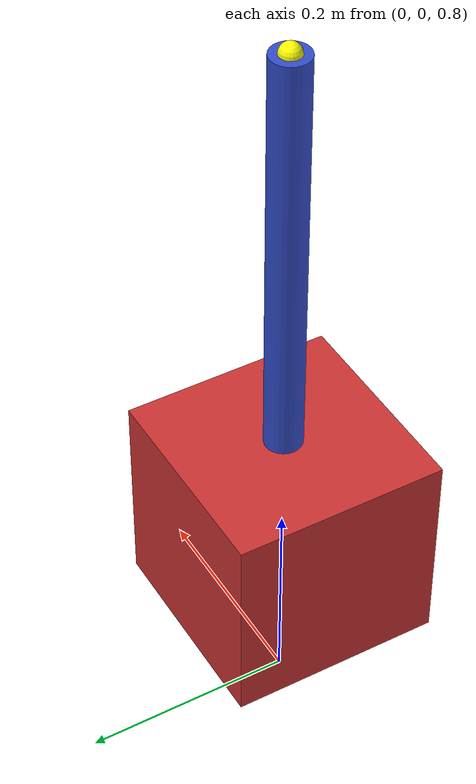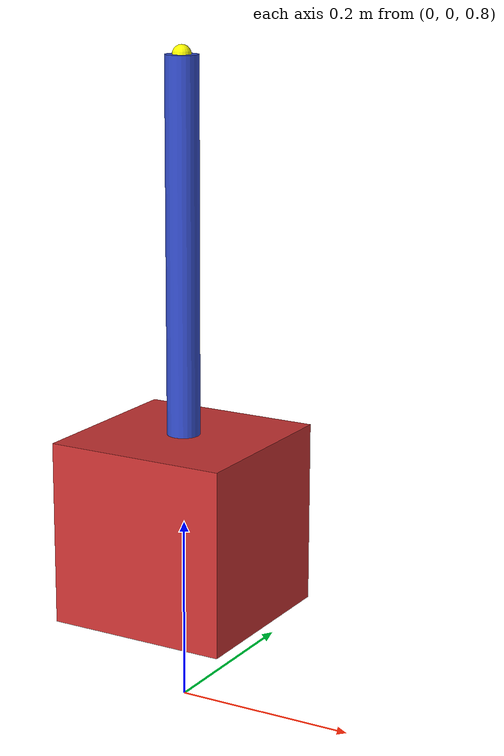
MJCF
<mujoco model="cartpole_phase_space">
    <option timestep="0.005" integrator="RK4" gravity="0 0 -9.81"/>

    <asset>
        <material name="mat_red" rgba="0.8 0.2 0.2 1"/>
        <material name="mat_blue" rgba="0.2 0.3 0.8 1"/>
        <material name="mat_green" rgba="0.2 0.7 0.2 1"/>
    </asset>

    <worldbody>
        <light pos="0 -2 3" dir="0 1 -1" directional="true" castshadow="true"/>
        <geom name="floor" type="plane" size="2 2 0.1" rgba="0.8 0.9 0.8 1" contype="1" conaffinity="1"/>
        <camera name="cam_side" pos="0 -3 1.0" quat="0.7071 0.7071 0 0"/>
        <camera name="cam_wide_fixed" pos="0 -2.5 1.4" quat="0.7071 0.7071 0 0" fovy="95"/>

        <body name="cartpole" pos="0 0 1.0">
            <joint name="base_x" type="slide" axis="1 0 0" range="-20 20" damping="0.5" frictionloss="0"/>

            <inertial pos="0 0 0" mass="1.0" diaginertia="0.00167 0.00167 0.00167"/>
            <geom name="base" type="box" size="0.1 0.1 0.1" material="mat_red"/>

            <body name="pole" pos="0 0 0">
                <joint name="j1" type="hinge" axis="0 1 0" damping="0.1"/>
                <inertial pos="0 0 0.25" mass="1.350000" diaginertia="0.0281250000 0.0281250000 0.0002148592"/>
                <geom name="link" type="cylinder" fromto="0 0 0 0 0 0.5" size="0.0178" material="mat_blue"/>
                <site name="tip_site" pos="0 0 0.5" size="0.01" rgba="1 1 0 1"/>
            </body>
        </body>
    </worldbody>

    <actuator>
        <motor joint="base_x" gear="1" ctrlrange="-100 100" forcerange="-100 100"/>
    </actuator>

    <sensor>
        <jointpos name="s_cart_pos" joint="base_x"/>
        <jointvel name="s_cart_vel" joint="base_x"/>

        <jointpos name="s_j1_pos" joint="j1"/>
        <jointvel name="s_j1_vel" joint="j1"/>

        <framepos name="s_tip_pos" objtype="site" objname="tip_site"/>
        <framelinvel name="s_tip_vel" objtype="site" objname="tip_site"/>
    </sensor>
</mujoco>
